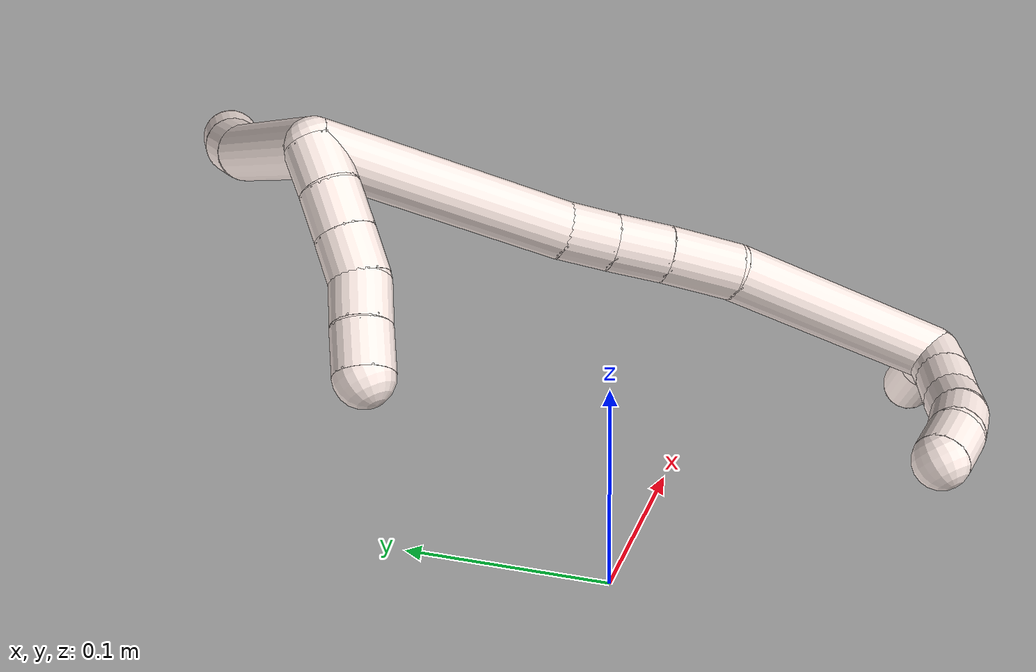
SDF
<sdf version="1.7">
 <world name="default">
  <model name="11">
   <static>0</static>
   <link name="11">
    <collision name="collision-cylinder-e_1_2_8">
     <pose>0.03781 0.02193 0.022769 -0.76663 0.874442 -0.37259</pose>
     <geometry><cylinder><radius>0.0125</radius><length>0.098569</length></cylinder></geometry>
     <surface>
      <friction><ode><mu>1.16</mu><mu2>1.16</mu2><slip1>0</slip1><slip2>0</slip2></ode></friction>
      <contact><ode><kp>1e+06</kp><kd>1</kd><max_vel>0</max_vel><min_depth>0.001</min_depth></ode></contact>
     </surface>
    </collision>
    <visual name="visual-cylinder-e_1_2_8">
     <pose>0.03781 0.02193 0.022769 -0.76663 0.874442 -0.37259</pose>
     <geometry><cylinder><radius>0.0125</radius><length>0.098569</length></cylinder></geometry>
     <material><ambient>1 0.933333 0.909804 1</ambient></material>
    </visual>
    <collision name="collision-cylinder-e_2_8_9">
     <pose>0.087179 0.048519 0.05361 -0.523441 0.892145 -0.254809</pose>
     <geometry><cylinder><radius>0.0125</radius><length>0.029696</length></cylinder></geometry>
     <surface>
      <friction><ode><mu>1.16</mu><mu2>1.16</mu2><slip1>0</slip1><slip2>0</slip2></ode></friction>
      <contact><ode><kp>1e+06</kp><kd>1</kd><max_vel>0</max_vel><min_depth>0.001</min_depth></ode></contact>
     </surface>
    </collision>
    <visual name="visual-cylinder-e_2_8_9">
     <pose>0.087179 0.048519 0.05361 -0.523441 0.892145 -0.254809</pose>
     <geometry><cylinder><radius>0.0125</radius><length>0.029696</length></cylinder></geometry>
     <material><ambient>1 0.933333 0.909804 1</ambient></material>
    </visual>
    <collision name="collision-cylinder-e_3_9_6">
     <pose>0.10752 0.05507 0.067797 -0.300216 0.941114 -0.153565</pose>
     <geometry><cylinder><radius>0.0125</radius><length>0.021735</length></cylinder></geometry>
     <surface>
      <friction><ode><mu>1.16</mu><mu2>1.16</mu2><slip1>0</slip1><slip2>0</slip2></ode></friction>
      <contact><ode><kp>1e+06</kp><kd>1</kd><max_vel>0</max_vel><min_depth>0.001</min_depth></ode></contact>
     </surface>
    </collision>
    <visual name="visual-cylinder-e_3_9_6">
     <pose>0.10752 0.05507 0.067797 -0.300216 0.941114 -0.153565</pose>
     <geometry><cylinder><radius>0.0125</radius><length>0.021735</length></cylinder></geometry>
     <material><ambient>1 0.933333 0.909804 1</ambient></material>
    </visual>
    <collision name="collision-cylinder-e_1_2_10">
     <pose>-0.001022 0.000392 -0.00994 -3.10213 -0.102405 2.40643</pose>
     <geometry><cylinder><radius>0.0125</radius><length>0.02</length></cylinder></geometry>
     <surface>
      <friction><ode><mu>1.16</mu><mu2>1.16</mu2><slip1>0</slip1><slip2>0</slip2></ode></friction>
      <contact><ode><kp>1e+06</kp><kd>1</kd><max_vel>0</max_vel><min_depth>0.001</min_depth></ode></contact>
     </surface>
    </collision>
    <visual name="visual-cylinder-e_1_2_10">
     <pose>-0.001022 0.000392 -0.00994 -3.10213 -0.102405 2.40643</pose>
     <geometry><cylinder><radius>0.0125</radius><length>0.02</length></cylinder></geometry>
     <material><ambient>1 0.933333 0.909804 1</ambient></material>
    </visual>
    <collision name="collision-cylinder-e_2_10_11">
     <pose>-0.002356 0.001646 -0.029838 -3.0553 -0.031138 0.692216</pose>
     <geometry><cylinder><radius>0.0125</radius><length>0.02</length></cylinder></geometry>
     <surface>
      <friction><ode><mu>1.16</mu><mu2>1.16</mu2><slip1>0</slip1><slip2>0</slip2></ode></friction>
      <contact><ode><kp>1e+06</kp><kd>1</kd><max_vel>0</max_vel><min_depth>0.001</min_depth></ode></contact>
     </surface>
    </collision>
    <visual name="visual-cylinder-e_2_10_11">
     <pose>-0.002356 0.001646 -0.029838 -3.0553 -0.031138 0.692216</pose>
     <geometry><cylinder><radius>0.0125</radius><length>0.02</length></cylinder></geometry>
     <material><ambient>1 0.933333 0.909804 1</ambient></material>
    </visual>
    <collision name="collision-cylinder-e_3_11_12">
     <pose>-0.002911 0.003492 -0.049744 -3.04304 -0.024377 0.484604</pose>
     <geometry><cylinder><radius>0.0125</radius><length>0.02</length></cylinder></geometry>
     <surface>
      <friction><ode><mu>1.16</mu><mu2>1.16</mu2><slip1>0</slip1><slip2>0</slip2></ode></friction>
      <contact><ode><kp>1e+06</kp><kd>1</kd><max_vel>0</max_vel><min_depth>0.001</min_depth></ode></contact>
     </surface>
    </collision>
    <visual name="visual-cylinder-e_3_11_12">
     <pose>-0.002911 0.003492 -0.049744 -3.04304 -0.024377 0.484604</pose>
     <geometry><cylinder><radius>0.0125</radius><length>0.02</length></cylinder></geometry>
     <material><ambient>1 0.933333 0.909804 1</ambient></material>
    </visual>
    <collision name="collision-cylinder-e_4_12_13">
     <pose>-0.005546 0.007504 -0.068918 -2.82438 -0.241461 1.29781</pose>
     <geometry><cylinder><radius>0.0125</radius><length>0.02</length></cylinder></geometry>
     <surface>
      <friction><ode><mu>1.16</mu><mu2>1.16</mu2><slip1>0</slip1><slip2>0</slip2></ode></friction>
      <contact><ode><kp>1e+06</kp><kd>1</kd><max_vel>0</max_vel><min_depth>0.001</min_depth></ode></contact>
     </surface>
    </collision>
    <visual name="visual-cylinder-e_4_12_13">
     <pose>-0.005546 0.007504 -0.068918 -2.82438 -0.241461 1.29781</pose>
     <geometry><cylinder><radius>0.0125</radius><length>0.02</length></cylinder></geometry>
     <material><ambient>1 0.933333 0.909804 1</ambient></material>
    </visual>
    <collision name="collision-cylinder-e_5_13_5">
     <pose>-0.009684 0.013493 -0.087534 -2.83617 -0.175613 1.03913</pose>
     <geometry><cylinder><radius>0.0125</radius><length>0.02</length></cylinder></geometry>
     <surface>
      <friction><ode><mu>1.16</mu><mu2>1.16</mu2><slip1>0</slip1><slip2>0</slip2></ode></friction>
      <contact><ode><kp>1e+06</kp><kd>1</kd><max_vel>0</max_vel><min_depth>0.001</min_depth></ode></contact>
     </surface>
    </collision>
    <visual name="visual-cylinder-e_5_13_5">
     <pose>-0.009684 0.013493 -0.087534 -2.83617 -0.175613 1.03913</pose>
     <geometry><cylinder><radius>0.0125</radius><length>0.02</length></cylinder></geometry>
     <material><ambient>1 0.933333 0.909804 1</ambient></material>
    </visual>
    <collision name="collision-cylinder-e_1_2_14">
     <pose>0.033874 -0.033935 -0.028152 2.26333 0.655086 1.25248</pose>
     <geometry><cylinder><radius>0.0125</radius><length>0.111204</length></cylinder></geometry>
     <surface>
      <friction><ode><mu>1.16</mu><mu2>1.16</mu2><slip1>0</slip1><slip2>0</slip2></ode></friction>
      <contact><ode><kp>1e+06</kp><kd>1</kd><max_vel>0</max_vel><min_depth>0.001</min_depth></ode></contact>
     </surface>
    </collision>
    <visual name="visual-cylinder-e_1_2_14">
     <pose>0.033874 -0.033935 -0.028152 2.26333 0.655086 1.25248</pose>
     <geometry><cylinder><radius>0.0125</radius><length>0.111204</length></cylinder></geometry>
     <material><ambient>1 0.933333 0.909804 1</ambient></material>
    </visual>
    <collision name="collision-cylinder-e_2_14_15">
     <pose>0.073389 -0.07554 -0.061822 2.19431 0.538215 0.987299</pose>
     <geometry><cylinder><radius>0.0125</radius><length>0.02201</length></cylinder></geometry>
     <surface>
      <friction><ode><mu>1.16</mu><mu2>1.16</mu2><slip1>0</slip1><slip2>0</slip2></ode></friction>
      <contact><ode><kp>1e+06</kp><kd>1</kd><max_vel>0</max_vel><min_depth>0.001</min_depth></ode></contact>
     </surface>
    </collision>
    <visual name="visual-cylinder-e_2_14_15">
     <pose>0.073389 -0.07554 -0.061822 2.19431 0.538215 0.987299</pose>
     <geometry><cylinder><radius>0.0125</radius><length>0.02201</length></cylinder></geometry>
     <material><ambient>1 0.933333 0.909804 1</ambient></material>
    </visual>
    <collision name="collision-cylinder-e_3_15_16">
     <pose>0.085175 -0.091902 -0.073324 2.17379 0.527295 0.948911</pose>
     <geometry><cylinder><radius>0.0125</radius><length>0.024422</length></cylinder></geometry>
     <surface>
      <friction><ode><mu>1.16</mu><mu2>1.16</mu2><slip1>0</slip1><slip2>0</slip2></ode></friction>
      <contact><ode><kp>1e+06</kp><kd>1</kd><max_vel>0</max_vel><min_depth>0.001</min_depth></ode></contact>
     </surface>
    </collision>
    <visual name="visual-cylinder-e_3_15_16">
     <pose>0.085175 -0.091902 -0.073324 2.17379 0.527295 0.948911</pose>
     <geometry><cylinder><radius>0.0125</radius><length>0.024422</length></cylinder></geometry>
     <material><ambient>1 0.933333 0.909804 1</ambient></material>
    </visual>
    <collision name="collision-cylinder-e_4_16_17">
     <pose>0.099757 -0.111749 -0.087557 2.20752 0.546404 1.01442</pose>
     <geometry><cylinder><radius>0.0125</radius><length>0.032476</length></cylinder></geometry>
     <surface>
      <friction><ode><mu>1.16</mu><mu2>1.16</mu2><slip1>0</slip1><slip2>0</slip2></ode></friction>
      <contact><ode><kp>1e+06</kp><kd>1</kd><max_vel>0</max_vel><min_depth>0.001</min_depth></ode></contact>
     </surface>
    </collision>
    <visual name="visual-cylinder-e_4_16_17">
     <pose>0.099757 -0.111749 -0.087557 2.20752 0.546404 1.01442</pose>
     <geometry><cylinder><radius>0.0125</radius><length>0.032476</length></cylinder></geometry>
     <material><ambient>1 0.933333 0.909804 1</ambient></material>
    </visual>
    <collision name="collision-cylinder-e_5_17_1">
     <pose>0.143315 -0.153515 -0.124932 2.33135 0.693463 1.40033</pose>
     <geometry><cylinder><radius>0.0125</radius><length>0.109889</length></cylinder></geometry>
     <surface>
      <friction><ode><mu>1.16</mu><mu2>1.16</mu2><slip1>0</slip1><slip2>0</slip2></ode></friction>
      <contact><ode><kp>1e+06</kp><kd>1</kd><max_vel>0</max_vel><min_depth>0.001</min_depth></ode></contact>
     </surface>
    </collision>
    <visual name="visual-cylinder-e_5_17_1">
     <pose>0.143315 -0.153515 -0.124932 2.33135 0.693463 1.40033</pose>
     <geometry><cylinder><radius>0.0125</radius><length>0.109889</length></cylinder></geometry>
     <material><ambient>1 0.933333 0.909804 1</ambient></material>
    </visual>
    <collision name="collision-cylinder-e_1_1_18">
     <pose>0.189037 -0.18273 -0.15312 -0.978539 1.4134 -0.853363</pose>
     <geometry><cylinder><radius>0.0125</radius><length>0.021467</length></cylinder></geometry>
     <surface>
      <friction><ode><mu>1.16</mu><mu2>1.16</mu2><slip1>0</slip1><slip2>0</slip2></ode></friction>
      <contact><ode><kp>1e+06</kp><kd>1</kd><max_vel>0</max_vel><min_depth>0.001</min_depth></ode></contact>
     </surface>
    </collision>
    <visual name="visual-cylinder-e_1_1_18">
     <pose>0.189037 -0.18273 -0.15312 -0.978539 1.4134 -0.853363</pose>
     <geometry><cylinder><radius>0.0125</radius><length>0.021467</length></cylinder></geometry>
     <material><ambient>1 0.933333 0.909804 1</ambient></material>
    </visual>
    <collision name="collision-cylinder-e_2_18_4">
     <pose>0.238429 -0.176298 -0.148755 -0.973442 1.41502 -0.849968</pose>
     <geometry><cylinder><radius>0.0125</radius><length>0.078533</length></cylinder></geometry>
     <surface>
      <friction><ode><mu>1.16</mu><mu2>1.16</mu2><slip1>0</slip1><slip2>0</slip2></ode></friction>
      <contact><ode><kp>1e+06</kp><kd>1</kd><max_vel>0</max_vel><min_depth>0.001</min_depth></ode></contact>
     </surface>
    </collision>
    <visual name="visual-cylinder-e_2_18_4">
     <pose>0.238429 -0.176298 -0.148755 -0.973442 1.41502 -0.849968</pose>
     <geometry><cylinder><radius>0.0125</radius><length>0.078533</length></cylinder></geometry>
     <material><ambient>1 0.933333 0.909804 1</ambient></material>
    </visual>
    <collision name="collision-cylinder-e_1_1_19">
     <pose>0.171358 -0.183706 -0.161111 -3.08207 -0.786394 2.9983</pose>
     <geometry><cylinder><radius>0.0125</radius><length>0.02</length></cylinder></geometry>
     <surface>
      <friction><ode><mu>1.16</mu><mu2>1.16</mu2><slip1>0</slip1><slip2>0</slip2></ode></friction>
      <contact><ode><kp>1e+06</kp><kd>1</kd><max_vel>0</max_vel><min_depth>0.001</min_depth></ode></contact>
     </surface>
    </collision>
    <visual name="visual-cylinder-e_1_1_19">
     <pose>0.171358 -0.183706 -0.161111 -3.08207 -0.786394 2.9983</pose>
     <geometry><cylinder><radius>0.0125</radius><length>0.02</length></cylinder></geometry>
     <material><ambient>1 0.933333 0.909804 1</ambient></material>
    </visual>
    <collision name="collision-cylinder-e_2_19_20">
     <pose>0.156795 -0.182261 -0.174714 -2.98644 -0.845814 2.79955</pose>
     <geometry><cylinder><radius>0.0125</radius><length>0.02</length></cylinder></geometry>
     <surface>
      <friction><ode><mu>1.16</mu><mu2>1.16</mu2><slip1>0</slip1><slip2>0</slip2></ode></friction>
      <contact><ode><kp>1e+06</kp><kd>1</kd><max_vel>0</max_vel><min_depth>0.001</min_depth></ode></contact>
     </surface>
    </collision>
    <visual name="visual-cylinder-e_2_19_20">
     <pose>0.156795 -0.182261 -0.174714 -2.98644 -0.845814 2.79955</pose>
     <geometry><cylinder><radius>0.0125</radius><length>0.02</length></cylinder></geometry>
     <material><ambient>1 0.933333 0.909804 1</ambient></material>
    </visual>
    <collision name="collision-cylinder-e_3_20_21">
     <pose>0.140625 -0.18069 -0.186193 -3.03111 -1.05207 2.95168</pose>
     <geometry><cylinder><radius>0.0125</radius><length>0.02</length></cylinder></geometry>
     <surface>
      <friction><ode><mu>1.16</mu><mu2>1.16</mu2><slip1>0</slip1><slip2>0</slip2></ode></friction>
      <contact><ode><kp>1e+06</kp><kd>1</kd><max_vel>0</max_vel><min_depth>0.001</min_depth></ode></contact>
     </surface>
    </collision>
    <visual name="visual-cylinder-e_3_20_21">
     <pose>0.140625 -0.18069 -0.186193 -3.03111 -1.05207 2.95168</pose>
     <geometry><cylinder><radius>0.0125</radius><length>0.02</length></cylinder></geometry>
     <material><ambient>1 0.933333 0.909804 1</ambient></material>
    </visual>
    <collision name="collision-cylinder-e_4_21_22">
     <pose>0.123385 -0.17734 -0.195474 -2.56955 -1.0266 2.17987</pose>
     <geometry><cylinder><radius>0.0125</radius><length>0.02</length></cylinder></geometry>
     <surface>
      <friction><ode><mu>1.16</mu><mu2>1.16</mu2><slip1>0</slip1><slip2>0</slip2></ode></friction>
      <contact><ode><kp>1e+06</kp><kd>1</kd><max_vel>0</max_vel><min_depth>0.001</min_depth></ode></contact>
     </surface>
    </collision>
    <visual name="visual-cylinder-e_4_21_22">
     <pose>0.123385 -0.17734 -0.195474 -2.56955 -1.0266 2.17987</pose>
     <geometry><cylinder><radius>0.0125</radius><length>0.02</length></cylinder></geometry>
     <material><ambient>1 0.933333 0.909804 1</ambient></material>
    </visual>
    <collision name="collision-cylinder-e_5_22_3">
     <pose>0.107636 -0.169151 -0.204213 -2.25414 -0.802923 1.45795</pose>
     <geometry><cylinder><radius>0.0125</radius><length>0.02</length></cylinder></geometry>
     <surface>
      <friction><ode><mu>1.16</mu><mu2>1.16</mu2><slip1>0</slip1><slip2>0</slip2></ode></friction>
      <contact><ode><kp>1e+06</kp><kd>1</kd><max_vel>0</max_vel><min_depth>0.001</min_depth></ode></contact>
     </surface>
    </collision>
    <visual name="visual-cylinder-e_5_22_3">
     <pose>0.107636 -0.169151 -0.204213 -2.25414 -0.802923 1.45795</pose>
     <geometry><cylinder><radius>0.0125</radius><length>0.02</length></cylinder></geometry>
     <material><ambient>1 0.933333 0.909804 1</ambient></material>
    </visual>
    <collision name="collision-sphere-3">
     <pose>0.100442 -0.163765 -0.208598 0 -0 0</pose>
     <geometry><sphere><radius>0.0125</radius></sphere></geometry>
     <surface>
      <friction><ode><mu>1.16</mu><mu2>1.16</mu2><slip1>0</slip1><slip2>0</slip2></ode></friction>
      <contact><ode><kp>1e+06</kp><kd>1</kd><max_vel>0</max_vel><min_depth>0.001</min_depth></ode></contact>
     </surface>
    </collision>
    <visual name="visual-sphere-3">
     <pose>0.100442 -0.163765 -0.208598 0 -0 0</pose>
     <geometry><sphere><radius>0.0125</radius></sphere></geometry>
     <material><ambient>1 0.933333 0.909804 1</ambient></material>
    </visual>
    <collision name="collision-sphere-22">
     <pose>0.11483 -0.174538 -0.199827 0 -0 0</pose>
     <geometry><sphere><radius>0.0125</radius></sphere></geometry>
     <surface>
      <friction><ode><mu>1.16</mu><mu2>1.16</mu2><slip1>0</slip1><slip2>0</slip2></ode></friction>
      <contact><ode><kp>1e+06</kp><kd>1</kd><max_vel>0</max_vel><min_depth>0.001</min_depth></ode></contact>
     </surface>
    </collision>
    <visual name="visual-sphere-22">
     <pose>0.11483 -0.174538 -0.199827 0 -0 0</pose>
     <geometry><sphere><radius>0.0125</radius></sphere></geometry>
     <material><ambient>1 0.933333 0.909804 1</ambient></material>
    </visual>
    <collision name="collision-sphere-21">
     <pose>0.131941 -0.180143 -0.191121 0 -0 0</pose>
     <geometry><sphere><radius>0.0125</radius></sphere></geometry>
     <surface>
      <friction><ode><mu>1.16</mu><mu2>1.16</mu2><slip1>0</slip1><slip2>0</slip2></ode></friction>
      <contact><ode><kp>1e+06</kp><kd>1</kd><max_vel>0</max_vel><min_depth>0.001</min_depth></ode></contact>
     </surface>
    </collision>
    <visual name="visual-sphere-21">
     <pose>0.131941 -0.180143 -0.191121 0 -0 0</pose>
     <geometry><sphere><radius>0.0125</radius></sphere></geometry>
     <material><ambient>1 0.933333 0.909804 1</ambient></material>
    </visual>
    <collision name="collision-sphere-20">
     <pose>0.14931 -0.181236 -0.181266 0 -0 0</pose>
     <geometry><sphere><radius>0.0125</radius></sphere></geometry>
     <surface>
      <friction><ode><mu>1.16</mu><mu2>1.16</mu2><slip1>0</slip1><slip2>0</slip2></ode></friction>
      <contact><ode><kp>1e+06</kp><kd>1</kd><max_vel>0</max_vel><min_depth>0.001</min_depth></ode></contact>
     </surface>
    </collision>
    <visual name="visual-sphere-20">
     <pose>0.14931 -0.181236 -0.181266 0 -0 0</pose>
     <geometry><sphere><radius>0.0125</radius></sphere></geometry>
     <material><ambient>1 0.933333 0.909804 1</ambient></material>
    </visual>
    <collision name="collision-sphere-19">
     <pose>0.16428 -0.183286 -0.168163 0 -0 0</pose>
     <geometry><sphere><radius>0.0125</radius></sphere></geometry>
     <surface>
      <friction><ode><mu>1.16</mu><mu2>1.16</mu2><slip1>0</slip1><slip2>0</slip2></ode></friction>
      <contact><ode><kp>1e+06</kp><kd>1</kd><max_vel>0</max_vel><min_depth>0.001</min_depth></ode></contact>
     </surface>
    </collision>
    <visual name="visual-sphere-19">
     <pose>0.16428 -0.183286 -0.168163 0 -0 0</pose>
     <geometry><sphere><radius>0.0125</radius></sphere></geometry>
     <material><ambient>1 0.933333 0.909804 1</ambient></material>
    </visual>
    <collision name="collision-sphere-11">
     <pose>-0.002667 0.002508 -0.039796 0 -0 0</pose>
     <geometry><sphere><radius>0.0125</radius></sphere></geometry>
     <surface>
      <friction><ode><mu>1.16</mu><mu2>1.16</mu2><slip1>0</slip1><slip2>0</slip2></ode></friction>
      <contact><ode><kp>1e+06</kp><kd>1</kd><max_vel>0</max_vel><min_depth>0.001</min_depth></ode></contact>
     </surface>
    </collision>
    <visual name="visual-sphere-11">
     <pose>-0.002667 0.002508 -0.039796 0 -0 0</pose>
     <geometry><sphere><radius>0.0125</radius></sphere></geometry>
     <material><ambient>1 0.933333 0.909804 1</ambient></material>
    </visual>
    <collision name="collision-sphere-10">
     <pose>-0.002045 0.000785 -0.01988 0 -0 0</pose>
     <geometry><sphere><radius>0.0125</radius></sphere></geometry>
     <surface>
      <friction><ode><mu>1.16</mu><mu2>1.16</mu2><slip1>0</slip1><slip2>0</slip2></ode></friction>
      <contact><ode><kp>1e+06</kp><kd>1</kd><max_vel>0</max_vel><min_depth>0.001</min_depth></ode></contact>
     </surface>
    </collision>
    <visual name="visual-sphere-10">
     <pose>-0.002045 0.000785 -0.01988 0 -0 0</pose>
     <geometry><sphere><radius>0.0125</radius></sphere></geometry>
     <material><ambient>1 0.933333 0.909804 1</ambient></material>
    </visual>
    <collision name="collision-sphere-6">
     <pose>0.116303 0.056963 0.07391 0 -0 0</pose>
     <geometry><sphere><radius>0.0125</radius></sphere></geometry>
     <surface>
      <friction><ode><mu>1.16</mu><mu2>1.16</mu2><slip1>0</slip1><slip2>0</slip2></ode></friction>
      <contact><ode><kp>1e+06</kp><kd>1</kd><max_vel>0</max_vel><min_depth>0.001</min_depth></ode></contact>
     </surface>
    </collision>
    <visual name="visual-sphere-6">
     <pose>0.116303 0.056963 0.07391 0 -0 0</pose>
     <geometry><sphere><radius>0.0125</radius></sphere></geometry>
     <material><ambient>1 0.933333 0.909804 1</ambient></material>
    </visual>
    <collision name="collision-sphere-9">
     <pose>0.098737 0.053178 0.061683 0 -0 0</pose>
     <geometry><sphere><radius>0.0125</radius></sphere></geometry>
     <surface>
      <friction><ode><mu>1.16</mu><mu2>1.16</mu2><slip1>0</slip1><slip2>0</slip2></ode></friction>
      <contact><ode><kp>1e+06</kp><kd>1</kd><max_vel>0</max_vel><min_depth>0.001</min_depth></ode></contact>
     </surface>
    </collision>
    <visual name="visual-sphere-9">
     <pose>0.098737 0.053178 0.061683 0 -0 0</pose>
     <geometry><sphere><radius>0.0125</radius></sphere></geometry>
     <material><ambient>1 0.933333 0.909804 1</ambient></material>
    </visual>
    <collision name="collision-sphere-2">
     <geometry><sphere><radius>0.0125</radius></sphere></geometry>
     <surface>
      <friction><ode><mu>1.16</mu><mu2>1.16</mu2><slip1>0</slip1><slip2>0</slip2></ode></friction>
      <contact><ode><kp>1e+06</kp><kd>1</kd><max_vel>0</max_vel><min_depth>0.001</min_depth></ode></contact>
     </surface>
    </collision>
    <visual name="visual-sphere-2">
     <geometry><sphere><radius>0.0125</radius></sphere></geometry>
     <material><ambient>1 0.933333 0.909804 1</ambient></material>
    </visual>
    <collision name="collision-sphere-8">
     <pose>0.07562 0.043859 0.045538 0 -0 0</pose>
     <geometry><sphere><radius>0.0125</radius></sphere></geometry>
     <surface>
      <friction><ode><mu>1.16</mu><mu2>1.16</mu2><slip1>0</slip1><slip2>0</slip2></ode></friction>
      <contact><ode><kp>1e+06</kp><kd>1</kd><max_vel>0</max_vel><min_depth>0.001</min_depth></ode></contact>
     </surface>
    </collision>
    <visual name="visual-sphere-8">
     <pose>0.07562 0.043859 0.045538 0 -0 0</pose>
     <geometry><sphere><radius>0.0125</radius></sphere></geometry>
     <material><ambient>1 0.933333 0.909804 1</ambient></material>
    </visual>
    <collision name="collision-sphere-12">
     <pose>-0.003155 0.004475 -0.059693 0 -0 0</pose>
     <geometry><sphere><radius>0.0125</radius></sphere></geometry>
     <surface>
      <friction><ode><mu>1.16</mu><mu2>1.16</mu2><slip1>0</slip1><slip2>0</slip2></ode></friction>
      <contact><ode><kp>1e+06</kp><kd>1</kd><max_vel>0</max_vel><min_depth>0.001</min_depth></ode></contact>
     </surface>
    </collision>
    <visual name="visual-sphere-12">
     <pose>-0.003155 0.004475 -0.059693 0 -0 0</pose>
     <geometry><sphere><radius>0.0125</radius></sphere></geometry>
     <material><ambient>1 0.933333 0.909804 1</ambient></material>
    </visual>
    <collision name="collision-sphere-13">
     <pose>-0.007937 0.010533 -0.078144 0 -0 0</pose>
     <geometry><sphere><radius>0.0125</radius></sphere></geometry>
     <surface>
      <friction><ode><mu>1.16</mu><mu2>1.16</mu2><slip1>0</slip1><slip2>0</slip2></ode></friction>
      <contact><ode><kp>1e+06</kp><kd>1</kd><max_vel>0</max_vel><min_depth>0.001</min_depth></ode></contact>
     </surface>
    </collision>
    <visual name="visual-sphere-13">
     <pose>-0.007937 0.010533 -0.078144 0 -0 0</pose>
     <geometry><sphere><radius>0.0125</radius></sphere></geometry>
     <material><ambient>1 0.933333 0.909804 1</ambient></material>
    </visual>
    <collision name="collision-sphere-5">
     <pose>-0.011431 0.016454 -0.096925 0 -0 0</pose>
     <geometry><sphere><radius>0.0125</radius></sphere></geometry>
     <surface>
      <friction><ode><mu>1.16</mu><mu2>1.16</mu2><slip1>0</slip1><slip2>0</slip2></ode></friction>
      <contact><ode><kp>1e+06</kp><kd>1</kd><max_vel>0</max_vel><min_depth>0.001</min_depth></ode></contact>
     </surface>
    </collision>
    <visual name="visual-sphere-5">
     <pose>-0.011431 0.016454 -0.096925 0 -0 0</pose>
     <geometry><sphere><radius>0.0125</radius></sphere></geometry>
     <material><ambient>1 0.933333 0.909804 1</ambient></material>
    </visual>
    <collision name="collision-sphere-14">
     <pose>0.067748 -0.067869 -0.056305 0 -0 0</pose>
     <geometry><sphere><radius>0.0125</radius></sphere></geometry>
     <surface>
      <friction><ode><mu>1.16</mu><mu2>1.16</mu2><slip1>0</slip1><slip2>0</slip2></ode></friction>
      <contact><ode><kp>1e+06</kp><kd>1</kd><max_vel>0</max_vel><min_depth>0.001</min_depth></ode></contact>
     </surface>
    </collision>
    <visual name="visual-sphere-14">
     <pose>0.067748 -0.067869 -0.056305 0 -0 0</pose>
     <geometry><sphere><radius>0.0125</radius></sphere></geometry>
     <material><ambient>1 0.933333 0.909804 1</ambient></material>
    </visual>
    <collision name="collision-sphere-15">
     <pose>0.079031 -0.083211 -0.067339 0 -0 0</pose>
     <geometry><sphere><radius>0.0125</radius></sphere></geometry>
     <surface>
      <friction><ode><mu>1.16</mu><mu2>1.16</mu2><slip1>0</slip1><slip2>0</slip2></ode></friction>
      <contact><ode><kp>1e+06</kp><kd>1</kd><max_vel>0</max_vel><min_depth>0.001</min_depth></ode></contact>
     </surface>
    </collision>
    <visual name="visual-sphere-15">
     <pose>0.079031 -0.083211 -0.067339 0 -0 0</pose>
     <geometry><sphere><radius>0.0125</radius></sphere></geometry>
     <material><ambient>1 0.933333 0.909804 1</ambient></material>
    </visual>
    <collision name="collision-sphere-16">
     <pose>0.091319 -0.100594 -0.079308 0 -0 0</pose>
     <geometry><sphere><radius>0.0125</radius></sphere></geometry>
     <surface>
      <friction><ode><mu>1.16</mu><mu2>1.16</mu2><slip1>0</slip1><slip2>0</slip2></ode></friction>
      <contact><ode><kp>1e+06</kp><kd>1</kd><max_vel>0</max_vel><min_depth>0.001</min_depth></ode></contact>
     </surface>
    </collision>
    <visual name="visual-sphere-16">
     <pose>0.091319 -0.100594 -0.079308 0 -0 0</pose>
     <geometry><sphere><radius>0.0125</radius></sphere></geometry>
     <material><ambient>1 0.933333 0.909804 1</ambient></material>
    </visual>
    <collision name="collision-sphere-17">
     <pose>0.108195 -0.122904 -0.095805 0 -0 0</pose>
     <geometry><sphere><radius>0.0125</radius></sphere></geometry>
     <surface>
      <friction><ode><mu>1.16</mu><mu2>1.16</mu2><slip1>0</slip1><slip2>0</slip2></ode></friction>
      <contact><ode><kp>1e+06</kp><kd>1</kd><max_vel>0</max_vel><min_depth>0.001</min_depth></ode></contact>
     </surface>
    </collision>
    <visual name="visual-sphere-17">
     <pose>0.108195 -0.122904 -0.095805 0 -0 0</pose>
     <geometry><sphere><radius>0.0125</radius></sphere></geometry>
     <material><ambient>1 0.933333 0.909804 1</ambient></material>
    </visual>
    <collision name="collision-sphere-1">
     <pose>0.178436 -0.184126 -0.154059 0 -0 0</pose>
     <geometry><sphere><radius>0.0125</radius></sphere></geometry>
     <surface>
      <friction><ode><mu>1.16</mu><mu2>1.16</mu2><slip1>0</slip1><slip2>0</slip2></ode></friction>
      <contact><ode><kp>1e+06</kp><kd>1</kd><max_vel>0</max_vel><min_depth>0.001</min_depth></ode></contact>
     </surface>
    </collision>
    <visual name="visual-sphere-1">
     <pose>0.178436 -0.184126 -0.154059 0 -0 0</pose>
     <geometry><sphere><radius>0.0125</radius></sphere></geometry>
     <material><ambient>1 0.933333 0.909804 1</ambient></material>
    </visual>
    <collision name="collision-sphere-18">
     <pose>0.199638 -0.181334 -0.152181 0 -0 0</pose>
     <geometry><sphere><radius>0.0125</radius></sphere></geometry>
     <surface>
      <friction><ode><mu>1.16</mu><mu2>1.16</mu2><slip1>0</slip1><slip2>0</slip2></ode></friction>
      <contact><ode><kp>1e+06</kp><kd>1</kd><max_vel>0</max_vel><min_depth>0.001</min_depth></ode></contact>
     </surface>
    </collision>
    <visual name="visual-sphere-18">
     <pose>0.199638 -0.181334 -0.152181 0 -0 0</pose>
     <geometry><sphere><radius>0.0125</radius></sphere></geometry>
     <material><ambient>1 0.933333 0.909804 1</ambient></material>
    </visual>
    <collision name="collision-sphere-4">
     <pose>0.27722 -0.171261 -0.145328 0 -0 0</pose>
     <geometry><sphere><radius>0.0125</radius></sphere></geometry>
     <surface>
      <friction><ode><mu>1.16</mu><mu2>1.16</mu2><slip1>0</slip1><slip2>0</slip2></ode></friction>
      <contact><ode><kp>1e+06</kp><kd>1</kd><max_vel>0</max_vel><min_depth>0.001</min_depth></ode></contact>
     </surface>
    </collision>
    <visual name="visual-sphere-4">
     <pose>0.27722 -0.171261 -0.145328 0 -0 0</pose>
     <geometry><sphere><radius>0.0125</radius></sphere></geometry>
     <material><ambient>1 0.933333 0.909804 1</ambient></material>
    </visual>
    <inertial>
     <pose>0.095269 -0.077974 -0.074489 0 -0 0</pose>
     <mass>0.75</mass>
     <inertia>
      <ixx>0.000293</ixx>
      <ixy>0</ixy>
      <ixz>0</ixz>
      <iyy>0.000352</iyy>
      <iyz>0</iyz>
      <izz>-0.000179</izz>
     </inertia>
    </inertial>
   </link>
   <pose>-0.062781 0.10427 0.224992 -0.59334 0.625614 0.031613</pose>
  </model>
 </world>
</sdf>
